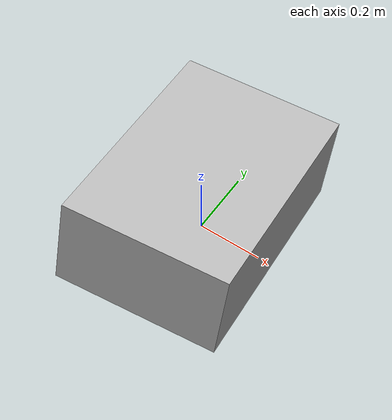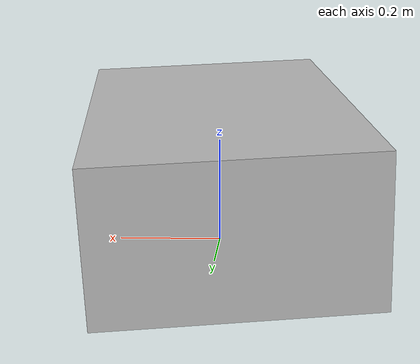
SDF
<?xml version="1.0" ?>
<sdf version="1.9">
  <model name="rock_small_b">
    <static>true</static>
    <link name="body">
      <visual name="v1">
        <pose>0 0 0.14 0.05 0.2 1.7</pose>
        <geometry><box><size>0.75 0.5 0.28</size></box></geometry>
        <material>
          <pbr><metal>
            <albedo_map>model://rock_small_b/materials/textures/rock_albedo.png</albedo_map>
            <normal_map>model://rock_small_b/materials/textures/rock_normal.png</normal_map>
            <roughness_map>model://rock_small_b/materials/textures/rock_roughness.png</roughness_map>
          </metal></pbr>
        </material>
      </visual>
      <collision name="col">
        <pose>0 0 0.14 0 0 0</pose>
        <geometry><box><size>0.78 0.55 0.3</size></box></geometry>
      </collision>
    </link>
  </model>
</sdf>
